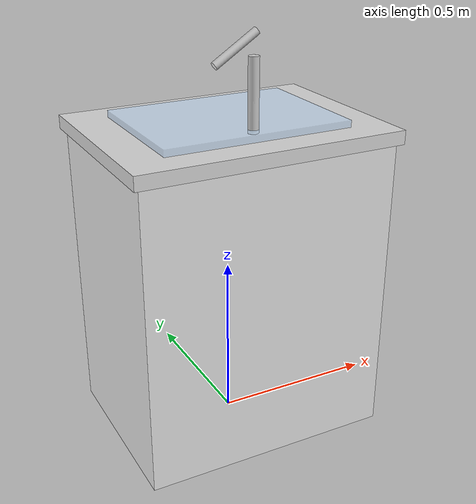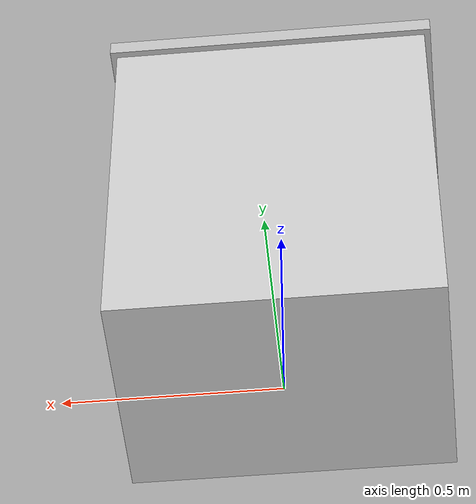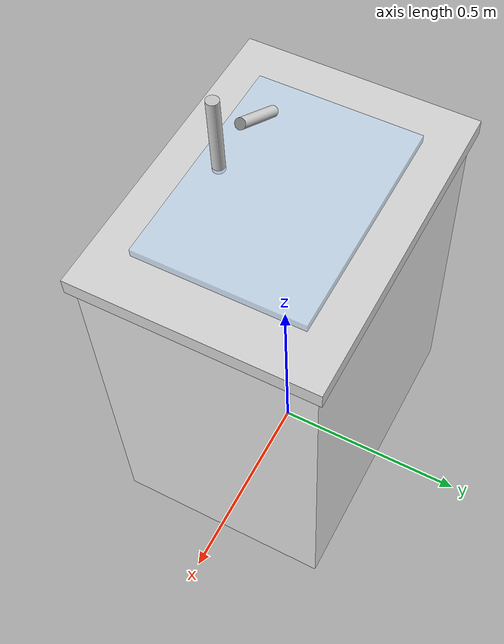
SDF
<?xml version="1.0"?>
<sdf version="1.6">
  <model name="decon_sink">
    <static>true</static>
    <!-- Cabinet body -->
    <link name="cabinet">
      <pose>0 0 0.45 0 0 0</pose>
      <collision name="c"><geometry><box><size>0.75 0.55 0.9</size></box></geometry></collision>
      <visual name="v">
        <geometry><box><size>0.75 0.55 0.9</size></box></geometry>
        <material><ambient>0.9 0.9 0.9 1</ambient><diffuse>0.9 0.9 0.9 1</diffuse></material>
      </visual>
    </link>
    <!-- Counter top -->
    <link name="top">
      <pose>0 0 0.92 0 0 0</pose>
      <collision name="c"><geometry><box><size>0.78 0.58 0.04</size></box></geometry></collision>
      <visual name="v">
        <geometry><box><size>0.78 0.58 0.04</size></box></geometry>
        <material><ambient>0.85 0.85 0.85 1</ambient><diffuse>0.85 0.85 0.85 1</diffuse></material>
      </visual>
    </link>
    <!-- Sink basin -->
    <link name="basin">
      <pose>0 0 0.9 0 0 0</pose>
      <collision name="c"><geometry><box><size>0.55 0.4 0.12</size></box></geometry></collision>
      <visual name="v">
        <geometry><box><size>0.55 0.4 0.12</size></box></geometry>
        <material><ambient>0.8 0.9 1.0 1</ambient><diffuse>0.8 0.9 1.0 0.7</diffuse></material>
      </visual>
    </link>
    <!-- Faucet post -->
    <link name="faucet">
      <pose>0 -0.15 1.05 0 0 0</pose>
      <collision name="c"><geometry><cylinder><radius>0.015</radius><length>0.2</length></cylinder></geometry></collision>
      <visual name="v">
        <geometry><cylinder><radius>0.015</radius><length>0.2</length></cylinder></geometry>
        <material><ambient>0.8 0.8 0.8 1</ambient><diffuse>0.8 0.8 0.8 1</diffuse>
          <specular>1 1 1 1</specular></material>
      </visual>
    </link>
    <!-- Faucet spout -->
    <link name="spout">
      <pose>0 -0.05 1.15 0 1.0 0</pose>
      <visual name="v"><geometry><cylinder><radius>0.012</radius><length>0.15</length></cylinder></geometry>
        <material><ambient>0.8 0.8 0.8 1</ambient><diffuse>0.8 0.8 0.8 1</diffuse></material></visual>
    </link>
  </model>
</sdf>
